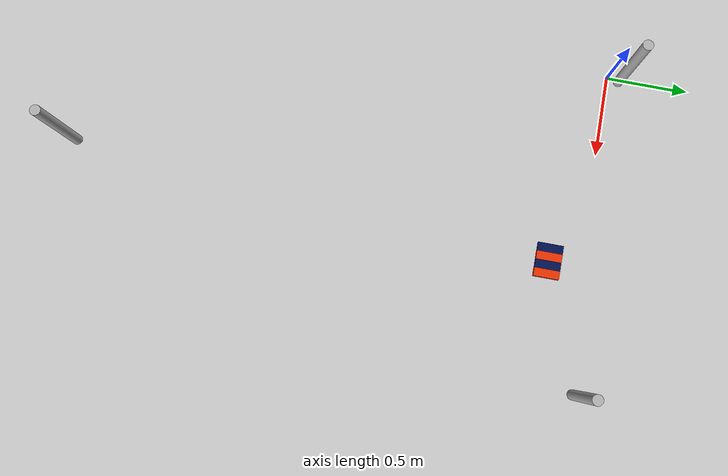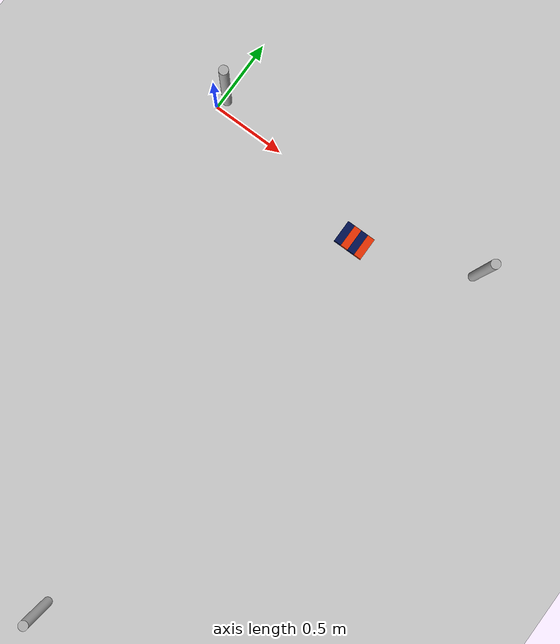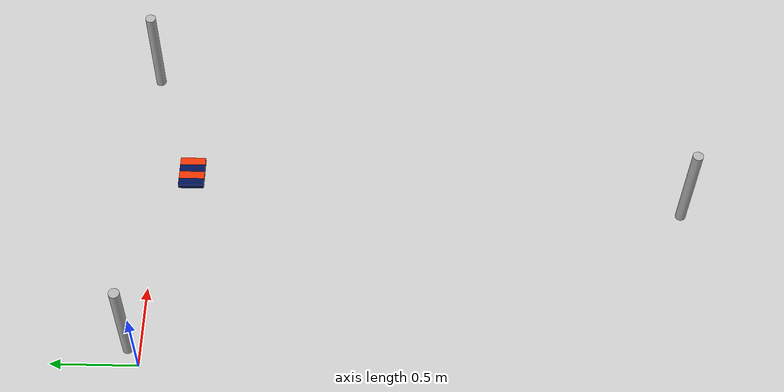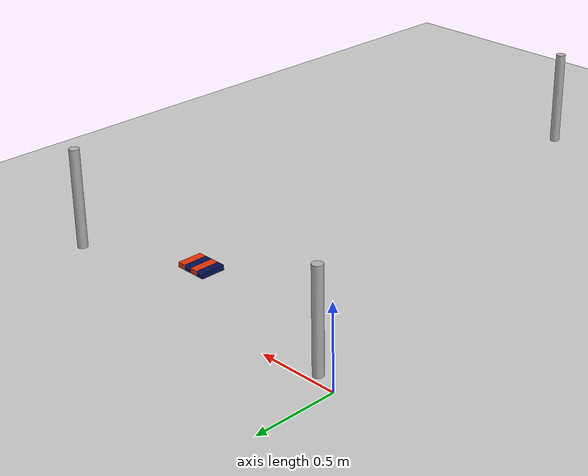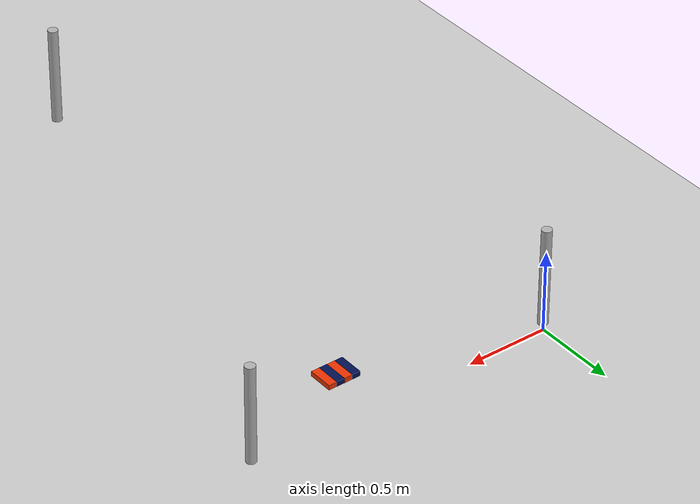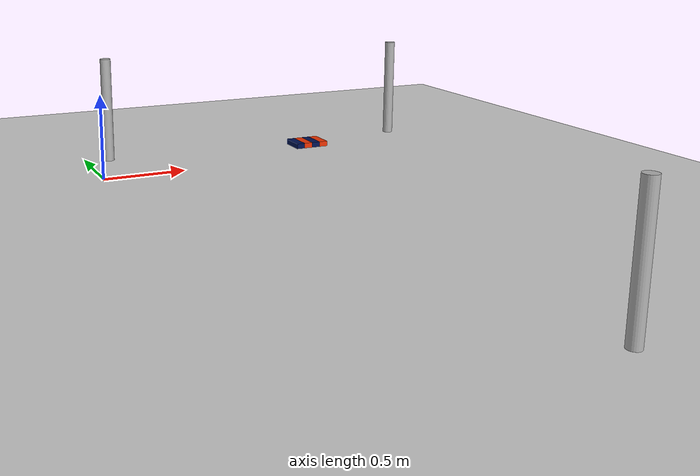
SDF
<sdf version="1.10">
 <world name="empty">
  <scene>
   <shadows>false</shadows>
   <ambient>0.7 0.7 0.7 1</ambient>
   <background>0 0 0 1</background>
   <gamma_correction>false</gamma_correction>
  </scene>
  <physics name="1ms" type="ignored">
   <max_step_size>0.001</max_step_size>
   <real_time_factor>1.0</real_time_factor>
   <real_time_update_rate>1000</real_time_update_rate>
  </physics>
  <plugin name="gz::sim::systems::Physics" filename="gz-sim-physics-system"/>
  <plugin name="gz::sim::systems::UserCommands" filename="gz-sim-user-commands-system"/>
  <plugin name="gz::sim::systems::SceneBroadcaster" filename="gz-sim-scene-broadcaster-system"/>
  <plugin name="gz::sim::systems::Sensors" filename="gz-sim-sensors-system">
   <render_engine>ogre2</render_engine>
  </plugin>
  <plugin name="gz::sim::systems::Contact" filename="gz-sim-contact-system"/>
  <gravity>0 0 -9.8000000000000007</gravity>
  <magnetic_field>5.5644999999999998e-06 2.2875799999999999e-05 -4.2388400000000002e-05</magnetic_field>
  <atmosphere type="adiabatic"/>
  <model name="ground_plane">
   <static>true</static>
   <link name="link">
    <collision name="collision">
     <geometry><plane><normal>0 0 1</normal><size>100 100</size></plane></geometry>
     <surface><friction>-</friction></surface>
    </collision>
    <visual name="visual">
     <geometry><plane><normal>0 0 1</normal><size>100 100</size></plane></geometry>
     <material>
      <ambient>0.800000012 0.800000012 0.800000012 1</ambient>
      <diffuse>0.800000012 0.800000012 0.800000012 1</diffuse>
      <specular>0.800000012 0.800000012 0.800000012 1</specular>
     </material>
    </visual>
    <inertial>
     <mass>1</mass>
     <inertia><ixx>1</ixx><ixy>0</ixy><ixz>0</ixz><iyy>1</iyy><iyz>0</iyz><izz>1</izz></inertia>
    </inertial>
   </link>
  </model>
  <include>
   <uri>file:///ros2-project/install/shesnar/share/shesnar/worlds/support_obstacle_comp/cargoes.sdf</uri>
   <name>all_cargo</name>
  </include>
  <model name="mayak1">
   <pose>1.0 -3.1 0.4 0.0 0.0 0.0</pose>
   <static>true</static>
   <link name="mayak1_link">
    <inertial>
     <inertia><ixx>8.27e-5</ixx><ixy>0</ixy><ixz>0</ixz><iyy>8.27e-5</iyy><iyz>0</iyz><izz>3.564e-5</izz></inertia>
     <mass>5</mass>
    </inertial>
    <collision name="mayak1_collision">
     <geometry><cylinder><radius>0.03</radius><length>0.6</length></cylinder></geometry>
    </collision>
    <visual name="mayak1_visual">
     <geometry><cylinder><radius>0.03</radius><length>0.6</length></cylinder></geometry>
     <material>
      <ambient>0.300000012 0.300000012 0.300000012 1</ambient>
      <diffuse>0.699999988 0.699999988 0.699999988 1</diffuse>
      <specular>1 1 1 1</specular>
     </material>
    </visual>
   </link>
  </model>
  <model name="mayak2">
   <pose>0.05 0.05 0.4 0.0 0.0 0.0</pose>
   <static>true</static>
   <link name="mayak2_link">
    <inertial>
     <inertia><ixx>8.27e-5</ixx><ixy>0</ixy><ixz>0</ixz><iyy>8.27e-5</iyy><iyz>0</iyz><izz>3.564e-5</izz></inertia>
     <mass>5</mass>
    </inertial>
    <collision name="mayak2_collision">
     <geometry><cylinder><radius>0.03</radius><length>0.6</length></cylinder></geometry>
    </collision>
    <visual name="mayak2_visual">
     <geometry><cylinder><radius>0.03</radius><length>0.6</length></cylinder></geometry>
     <material>
      <ambient>0.300000012 0.300000012 0.300000012 1</ambient>
      <diffuse>0.699999988 0.699999988 0.699999988 1</diffuse>
      <specular>1 1 1 1</specular>
     </material>
    </visual>
   </link>
  </model>
  <model name="mayak3">
   <pose>1.95 0.05 0.4 0.0 0.0 0.0</pose>
   <static>true</static>
   <link name="mayak3_link">
    <inertial>
     <inertia><ixx>8.27e-5</ixx><ixy>0</ixy><ixz>0</ixz><iyy>8.27e-5</iyy><iyz>0</iyz><izz>3.564e-5</izz></inertia>
     <mass>5</mass>
    </inertial>
    <collision name="mayak3_collision">
     <geometry><cylinder><radius>0.03</radius><length>0.6</length></cylinder></geometry>
    </collision>
    <visual name="mayak3_visual">
     <geometry><cylinder><radius>0.03</radius><length>0.6</length></cylinder></geometry>
     <material>
      <ambient>0.300000012 0.300000012 0.300000012 1</ambient>
      <diffuse>0.699999988 0.699999988 0.699999988 1</diffuse>
      <specular>1 1 1 1</specular>
     </material>
    </visual>
   </link>
  </model>
  <light name="sun" type="directional">
   <pose>0 0 5 0 0 0</pose>
   <intensity>1</intensity>
   <direction>0.0 0.0 -1.0</direction>
   <diffuse>1.0 1.0 1.0 1</diffuse>
   <specular>0.0 0.0 0.0 1</specular>
   <attenuation>
    <range>1000</range>
    <linear>0.01</linear>
    <constant>0.9</constant>
    <quadratic>0.001</quadratic>
   </attenuation>
   <spot><inner_angle>0</inner_angle><outer_angle>0</outer_angle><falloff>0</falloff></spot>
  </light>
 </world>
</sdf>

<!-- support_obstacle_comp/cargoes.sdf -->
<sdf version="1.10">
  <model name="all_cargo">
    <model name='group_1'>

      <model name='cargo_1_1'>
        <pose>1.145 -0.210 0.150 0 0 1.57</pose>
        <link name='grip_link_1_1'>
          <inertial>
            <inertia>
              <ixx>2.98e-4</ixx>
              <ixy>0</ixy>
              <ixz>0</ixz>
              <iyy>4.67e-3</iyy>
              <iyz>0</iyz>
              <izz>4.95e-3</izz>
            </inertia>
            <mass>0.35</mass>
            <pose>0 0 0 0 0 0</pose>
          </inertial>
          <collision name='box_collision_1_1'>
            <geometry>
              <box>
                <size>0.15 0.05 0.03</size>
              </box>
            </geometry>
            <surface>
              <friction>
                <ode/>
              </friction>
              <bounce/>
              <contact/>
            </surface>
          </collision>
          <visual name='box_visual_1_1'>
            <geometry>
              <box>
                <size>0.15 0.05 0.03</size>
              </box>
            </geometry>
            <material>
              <ambient> 0.0 0.068 0.325 1</ambient>
              <diffuse> 0.0 0.068 0.325 1</diffuse>
              <specular>0 0 0 1</specular>
              <emissive>0 0.05 0.0  1</emissive>
            </material>
            <gamma_correction>false</gamma_correction>
          </visual>
          <pose>0 0 0 0 0 0</pose>
          <enable_wind>false</enable_wind>
        </link>
        <static>false</static>
      </model>
      <model name='cargo_1_2'>
        <pose>1.195 -0.210 0.150 0 0 1.57</pose>
        <link name='grip_link_1_2'>
          <inertial>
            <inertia>
              <ixx>2.98e-4</ixx>
              <ixy>0</ixy>
              <ixz>0</ixz>
              <iyy>4.67e-3</iyy>
              <iyz>0</iyz>
              <izz>4.95e-3</izz>
            </inertia>
            <mass>0.35</mass>
            <pose>0 0 0 0 0 0</pose>
          </inertial>
          <collision name='box_collision_1_2'>
            <geometry>
              <box>
                <size>0.15 0.05 0.03</size>
              </box>
            </geometry>
            <surface>
              <friction>
                <ode/>
              </friction>
              <bounce/>
              <contact/>
            </surface>
          </collision>
          <visual name='box_visual_1_2'>
            <geometry>
              <box>
                <size>0.15 0.05 0.03</size>
              </box>
            </geometry>
            <material>
              <ambient> 0.93 0.2 0.007 1</ambient>
              <diffuse> 0.93 0.2 0.007 1</diffuse>
              <specular>0 0 0 1</specular>
              <emissive>0.2 0.05 0.0  1</emissive>
            </material>
            <gamma_correction>false</gamma_correction>
          </visual>
          <pose>0 0 0 0 0 0</pose>
          <enable_wind>false</enable_wind>
        </link>
        <static>false</static>
      </model>
      <model name='cargo_1_3'>
        <pose>1.245 -0.210 0.150 0 0 1.57</pose>
        <link name='grip_link_1_3'>
          <inertial>
            <inertia>
              <ixx>2.98e-4</ixx>
              <ixy>0</ixy>
              <ixz>0</ixz>
              <iyy>4.67e-3</iyy>
              <iyz>0</iyz>
              <izz>4.95e-3</izz>
            </inertia>
            <mass>0.35</mass>
            <pose>0 0 0 0 0 0</pose>
          </inertial>
          <collision name='box_collision_1_3'>
            <geometry>
              <box>
                <size>0.15 0.05 0.03</size>
              </box>
            </geometry>
            <surface>
              <friction>
                <ode/>
              </friction>
              <bounce/>
              <contact/>
            </surface>
          </collision>
          <visual name='box_visual_1_3'>
            <geometry>
              <box>
                <size>0.15 0.05 0.03</size>
              </box>
            </geometry>
            <material>
              <ambient> 0.0 0.068 0.325 1</ambient>
              <diffuse> 0.0 0.068 0.325 1</diffuse>
              <specular>0 0 0 1</specular>
              <emissive>0 0.05 0.0  1</emissive>
            </material>
            <gamma_correction>false</gamma_correction>
          </visual>
          <pose>0 0 0 0 0 0</pose>
          <enable_wind>false</enable_wind>
        </link>
        <static>false</static>
      </model>
      <model name='cargo_1_4'>
        <pose>1.295 -0.210 0.150 0 0 1.57</pose>
        <link name='grip_link_1_4'>
          <inertial>
            <inertia>
              <ixx>2.98e-4</ixx>
              <ixy>0</ixy>
              <ixz>0</ixz>
              <iyy>4.67e-3</iyy>
              <iyz>0</iyz>
              <izz>4.95e-3</izz>
            </inertia>
            <mass>0.35</mass>
            <pose>0 0 0 0 0 0</pose>
          </inertial>
          <collision name='box_collision_1_4'>
            <geometry>
              <box>
                <size>0.15 0.05 0.03</size>
              </box>
            </geometry>
            <surface>
              <friction>
                <ode/>
              </friction>
              <bounce/>
              <contact/>
            </surface>
          </collision>
          <visual name='box_visual_1_4'>
            <geometry>
              <box>
                <size>0.15 0.05 0.03</size>
              </box>
            </geometry>
            <material>
              <ambient> 0.93 0.2 0.007 1</ambient>
              <diffuse> 0.93 0.2 0.007 1</diffuse>
              <specular>0 0 0 1</specular>
              <emissive>0.2 0.05 0.0  1</emissive>
            </material>
            <gamma_correction>false</gamma_correction>
          </visual>
          <pose>0 0 0 0 0 0</pose>
          <enable_wind>false</enable_wind>
        </link>
        <static>false</static>
      </model>
    </model>
  </model>
</sdf>
